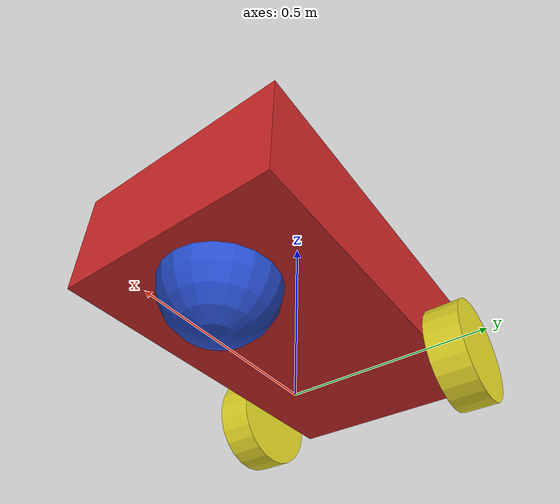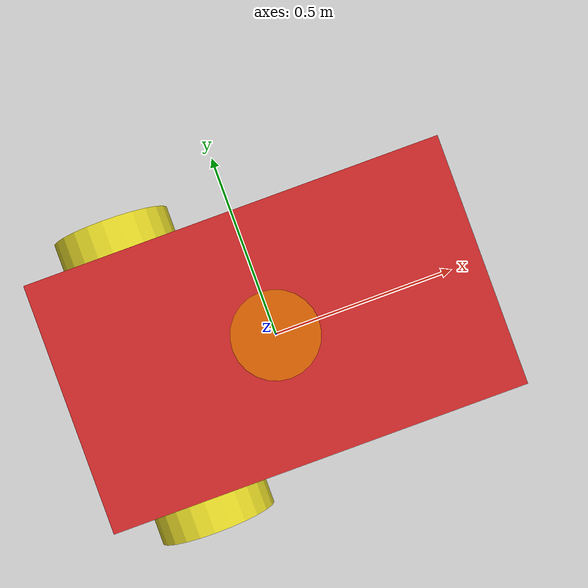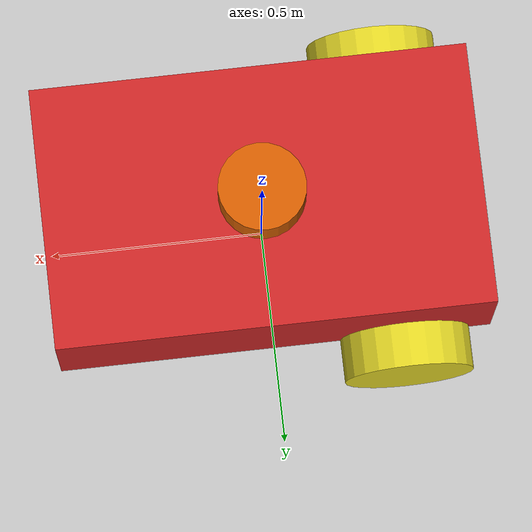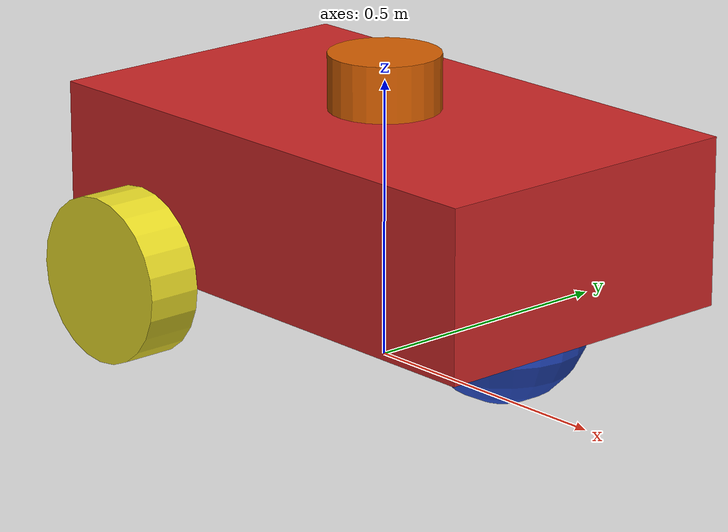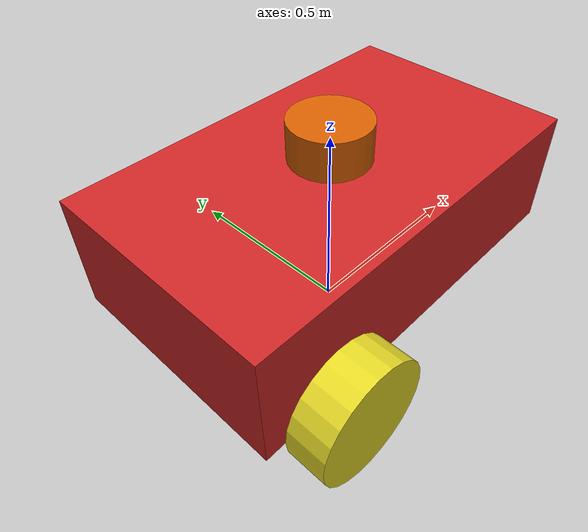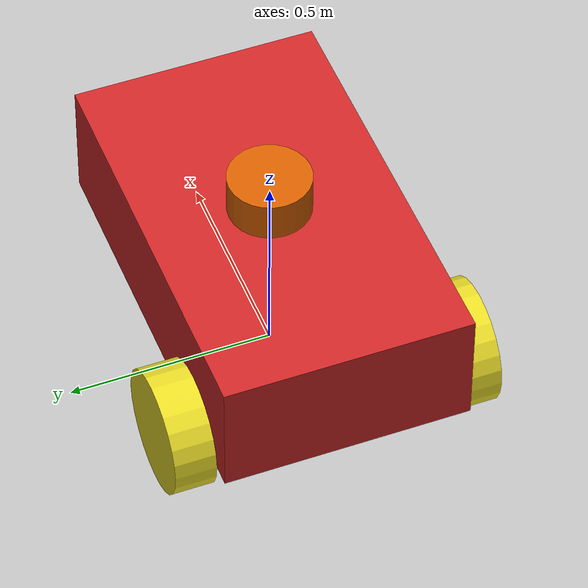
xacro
<?xml version="1.0"?>
<!--
    This is the URDF (Unified Robot Description Format) file for the differential drive robot.
    It uses XACRO (XML Macros) for creating a more readable and reusable file.
-->

<!-- Main robot tag with the xacro namespace -->
<robot name="differential_drive_robot" xmlns:xacro="http://www.ros.org/wiki/xacro">

    <!--                  GEOMETRY AND CONSTANTS                          -->

    <!-- Pi constant -->
    <xacro:property name="pi_const" value="3.14159265"/>

    <!-- Body dimensions (in meters) -->
    <xacro:property name="a" value="1" />    <!-- Length -->
    <xacro:property name="b" value="0.3" />  <!-- Height -->
    <xacro:property name="c" value="0.6"/>   <!-- Width -->

    <!-- Wheel and caster dimensions (in meters) -->
    <xacro:property name="r" value="0.15"/>  <!-- Wheel and caster radius -->
    <xacro:property name="d" value="0.1"/>   <!-- Wheel width -->

    <!-- Offsets for links and joints -->
    <xacro:property name="s1" value="${b/2 + r}"/>        <!-- Vertical offset for body link's origin -->
    <xacro:property name="s2" value="${2 * r}"/>          <!-- Lateral offset for wheel joints from center -->
    <xacro:property name="s3" value="${2 * r}"/>          <!-- Longitudinal offset for caster wheel -->
    <xacro:property name="s4" value="${c/2 + d/2}"/>      <!-- Lateral offset for wheel joints from center -->

    <!--                  MASS AND INERTIA                                -->

    <!-- Material densities (in kg/m^3) -->
    <xacro:property name="d1" value="2710.0"/> <!-- Body material density -->
    <xacro:property name="d2" value="2710.0"/> <!-- Wheel material density -->
    <xacro:property name="d3" value="2710.0"/> <!-- Caster material density -->

    <!-- Mass calculations (in kg) -->
    <xacro:property name="m1" value="${d1 * a * b * c}"/>           <!-- Body mass (volume * density) -->
    <xacro:property name="m2" value="${d2 * pi_const * r * r * d}"/>  <!-- Wheel mass (cylinder volume * density) -->
    <xacro:property name="m3" value="${d3 * (4.0/3.0) * pi_const * r * r * r}"/> <!-- Caster mass (sphere volume * density) -->

    <!-- Moments of inertia of the robot body -->
    <xacro:property name="Ix_body" value="${(1/12) * m1 * (b*b + c*c) }" />
    <xacro:property name="Iy_body" value="${(1/12) * m1 * (a*a + b*b) }" />
    <xacro:property name="Iz_body" value="${(1/12) * m1 * (a*a + c*c) }" />

    <!-- Moments of inertia of the wheel -->
    <xacro:property name="Iz_wheel" value="${0.5 * m2 * r*r}" />
    <xacro:property name="I_wheel" value="${(1.0/12.0) * m2 * (3.0 * r*r + d*d)}" />

    <!-- Moments of inertia of the caster sphere -->
    <xacro:property name="I_caster" value="${(2.0/5.0) * m3 * r*r}" />

    <!--                        MACROS FOR INERTIAL SECTIONS              -->

    <!-- Macro to define the complete inertial section of the robot body -->
    <xacro:macro name="inertia_body">
        <inertial>
            <origin rpy="0 0 0" xyz="0 0 ${s1}"/>
            <mass value="${m1}"/>
            <inertia ixx="${Ix_body}" ixy="0.0" ixz="0.0" iyy="${Iy_body}" iyz="0.0" izz="${Iz_body}" />
        </inertial>
    </xacro:macro>

    <!-- Macro to define the complete inertial section of the wheel -->
    <xacro:macro name="inertia_wheel">
        <inertial>
            <origin rpy="1.570795 0 0" xyz="0 0 0"/>
            <mass value="${m2}"/>
            <inertia ixx="${I_wheel}" ixy="0.0" ixz="0.0" iyy="${I_wheel}" iyz="0.0" izz="${Iz_wheel}" />
        </inertial>
    </xacro:macro>

    <!-- Macro to define the complete inertial section of the caster -->
    <xacro:macro name="inertia_caster">
        <inertial>
            <origin rpy="0 0 0" xyz="0 0 0"/>
            <mass value="${m3}"/>
            <inertia ixx="${I_caster}" ixy="0.0" ixz="0.0" iyy="${I_caster}" iyz="0.0" izz="${I_caster}" />
        </inertial>
    </xacro:macro>

    <!--                     ROS2_CONTROL CONFIGURATION                   -->

    <!-- ros2_control hardware interface -->
    <ros2_control name="GazeboSimSystem" type="system">
        <hardware>
            <plugin>gz_ros2_control/GazeboSimSystem</plugin>
        </hardware>

        <!-- Right wheel (wheel1_joint) -->
        <joint name="wheel1_joint">
            <command_interface name="velocity">
                <param name="min">-10</param>
                <param name="max">10</param>
            </command_interface>
            <state_interface name="position"/>
            <state_interface name="velocity"/>
        </joint>

        <!-- Left wheel (wheel2_joint) -->
        <joint name="wheel2_joint">
            <command_interface name="velocity">
                <param name="min">-10</param>
                <param name="max">10</param>
            </command_interface>
            <state_interface name="position"/>
            <state_interface name="velocity"/>
        </joint>
    </ros2_control>

    <!--                     INCLUDE ADDITIONAL FILES                     -->

    <!-- This line includes the file that defines extra Gazebo options and the motion control driver -->
    <xacro:include filename="$(find mobile_robot_py)/model/robot.gazebo" />

    <!--               DEFINE LINKS AND JOINTS                            -->

    <!-- START: Fictitious link of the robot. This is the root link. -->
    <!-- It is a link with no geometry or inertia, often needed for proper visualization in Gazebo -->
    <link name="base_footprint"> </link>

    <!-- Joint that connects the base_footprint to the body_link -->
    <joint name="body_link_joint" type="fixed">
        <parent link="base_footprint"/>
        <child link="body_link"/>
    </joint>
    <!-- END: Fictitious link -->

    <!-- START: Body link of the robot -->
    <link name="body_link">
        <visual>
            <geometry>
                <box size="${a} ${c} ${b}" />
            </geometry>
            <!-- Displacement of the body's geometric center relative to the link's origin -->
            <origin rpy="0 0 0" xyz="0 0 ${s1}"/>
        </visual>
        <collision>
            <geometry>
                <box size="${a} ${c} ${b}" />
            </geometry>
            <origin rpy="0 0 0" xyz="0 0 ${s1}"/>
        </collision>
        <!-- The inertia is defined by the macro we created earlier -->
        <xacro:inertia_body />
    </link>
    <!-- END: Body link -->

    <!-- START: Back right wheel of the robot and the joint -->
    <joint name="wheel1_joint" type="continuous" >
        <parent link="body_link" />
        <child link="wheel1_link" />
        <origin xyz="${-s2} ${-s4} ${r}" rpy="0 0 0" />
        <axis xyz="0 1 0"/>
        <limit effort="50000" velocity="10"/>
        <dynamics damping="1.0" friction="1.0"/>
    </joint>

    <link name="wheel1_link">
        <visual>
            <origin rpy="1.570795 0 0" xyz="0 0 0"/>
            <geometry>
                <cylinder length="${d}" radius="${r}"/>
            </geometry>
        </visual>
        <collision>
            <origin rpy="1.570795 0 0" xyz="0 0 0"/>
            <geometry>
                <cylinder length="${d}" radius="${r}"/>
            </geometry>
        </collision>
        <xacro:inertia_wheel />
    </link>
    <!-- END: Back right wheel -->

    <!-- START: Back left wheel of the robot and the joint -->
    <joint name="wheel2_joint" type="continuous" >
        <parent link="body_link" />
        <child link="wheel2_link" />
        <origin xyz="${-s2} ${s4} ${r}" rpy="0 0 0" />
        <axis xyz="0 1 0"/>
        <limit effort="50000" velocity="10"/>
        <dynamics damping="1.0" friction="1.0"/>
    </joint>

    <link name="wheel2_link">
        <visual>
            <origin rpy="1.570795 0 0" xyz="0 0 0"/>
            <geometry>
                <cylinder length="${d}" radius="${r}"/>
            </geometry>
        </visual>
        <collision>
            <origin rpy="1.570795 0 0" xyz="0 0 0"/>
            <geometry>
                <cylinder length="${d}" radius="${r}"/>
            </geometry>
        </collision>
        <xacro:inertia_wheel />
    </link>
    <!-- END: Back left wheel -->

    <!-- START: Caster wheel -->
    <joint name="caster_joint" type="fixed">
        <parent link="body_link"/>
        <child link="caster_link"/>
        <origin xyz="${s3} 0 ${r}" rpy="0 0 0"/>
    </joint>

    <link name="caster_link">
        <visual>
            <origin rpy="0 0 0" xyz="0 0 0"/>
            <geometry>
                <sphere radius="${r}" />
            </geometry>
        </visual>
        <collision>
            <origin rpy="0 0 0" xyz="0 0 0"/>
            <geometry>
                <sphere radius="${r}" />
            </geometry>
        </collision>
        <xacro:inertia_caster />
    </link>
    <!-- END: Caster wheel -->

    <!-- START: LIDAR -->

    <joint name="lidar_joint" type="fixed">
        <origin xyz="0.0 0 ${b+r}" rpy="0 0 0"/>
        <parent link="body_link"/>
        <child link="lidar_link"/>
    </joint>
    <link name="lidar_link">
        <visual>
            <origin xyz="0 0 0.05" rpy="0 0 0"/>
            <geometry>
                <cylinder length="0.1" radius="0.1"/>
            </geometry>
        </visual>
        <collision>
            <origin xyz="0 0 0.05" rpy="0 0 0"/>
            <geometry>
                <cylinder length="0.1" radius="0.1"/>
            </geometry>
        </collision>
        <inertial>
            <mass value="0.01"/>
            <origin xyz="0 0 0" rpy="0 0 0"/>
            <inertia ixx="0.0001" ixy="0" ixz="0"
                    iyy="0.0001" iyz="0" izz="0.0001"/>
        </inertial>
    </link>
    <!-- END: LIDAR -->
</robot>
